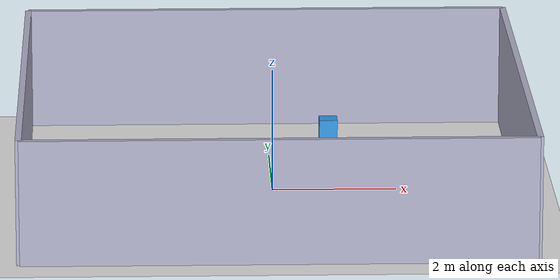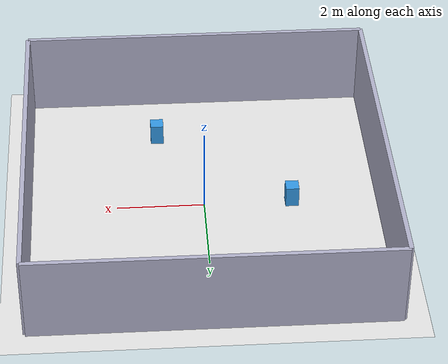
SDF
<?xml version="1.0"?>
<sdf version="1.8">
  <world name="symmetric_room">
    <!-- 8x8m room with 3 identical landmarks — Chapter 4 kidnapped robot demo -->
    <physics name="1ms" type="ignored">
      <max_step_size>0.001</max_step_size>
      <real_time_factor>1.0</real_time_factor>
    </physics>
    <plugin filename="gz-sim-physics-system" name="gz::sim::systems::Physics"/>
    <plugin filename="gz-sim-user-commands-system" name="gz::sim::systems::UserCommands"/>
    <plugin filename="gz-sim-scene-broadcaster-system" name="gz::sim::systems::SceneBroadcaster"/>
    <plugin filename="gz-sim-sensors-system" name="gz::sim::systems::Sensors">
      <render_engine>ogre2</render_engine>
    </plugin>

    <light type="directional" name="sun">
      <cast_shadows>true</cast_shadows>
      <pose>0 0 10 0 0 0</pose>
      <diffuse>0.8 0.8 0.8 1</diffuse>
      <specular>0.2 0.2 0.2 1</specular>
      <direction>-0.5 0.1 -0.9</direction>
    </light>

    <model name="ground_plane">
      <static>true</static>
      <link name="link">
        <collision name="collision">
          <geometry><plane><normal>0 0 1</normal><size>20 20</size></plane></geometry>
        </collision>
        <visual name="visual">
          <geometry><plane><normal>0 0 1</normal><size>20 20</size></plane></geometry>
          <material><ambient>0.9 0.9 0.9 1</ambient></material>
        </visual>
      </link>
    </model>

    <!-- Room walls (8x8) -->
    <model name="north_wall">
      <static>true</static>
      <pose>0 4 1 0 0 0</pose>
      <link name="link">
        <collision name="collision"><geometry><box><size>8 0.1 2</size></box></geometry></collision>
        <visual name="visual">
          <geometry><box><size>8 0.1 2</size></box></geometry>
          <material><ambient>0.7 0.7 0.8 1</ambient></material>
        </visual>
      </link>
    </model>
    <model name="south_wall">
      <static>true</static>
      <pose>0 -4 1 0 0 0</pose>
      <link name="link">
        <collision name="collision"><geometry><box><size>8 0.1 2</size></box></geometry></collision>
        <visual name="visual">
          <geometry><box><size>8 0.1 2</size></box></geometry>
          <material><ambient>0.7 0.7 0.8 1</ambient></material>
        </visual>
      </link>
    </model>
    <model name="east_wall">
      <static>true</static>
      <pose>4 0 1 0 0 0</pose>
      <link name="link">
        <collision name="collision"><geometry><box><size>0.1 8 2</size></box></geometry></collision>
        <visual name="visual">
          <geometry><box><size>0.1 8 2</size></box></geometry>
          <material><ambient>0.7 0.7 0.8 1</ambient></material>
        </visual>
      </link>
    </model>
    <model name="west_wall">
      <static>true</static>
      <pose>-4 0 1 0 0 0</pose>
      <link name="link">
        <collision name="collision"><geometry><box><size>0.1 8 2</size></box></geometry></collision>
        <visual name="visual">
          <geometry><box><size>0.1 8 2</size></box></geometry>
          <material><ambient>0.7 0.7 0.8 1</ambient></material>
        </visual>
      </link>
    </model>

    <!-- 3 identical landmarks (symmetric boxes) -->
    <model name="landmark_1">
      <static>true</static>
      <pose>-2 0 0.25 0 0 0</pose>
      <link name="link">
        <collision name="collision"><geometry><box><size>0.3 0.3 0.5</size></box></geometry></collision>
        <visual name="visual">
          <geometry><box><size>0.3 0.3 0.5</size></box></geometry>
          <material><ambient>0.2 0.6 0.9 1</ambient><diffuse>0.2 0.6 0.9 1</diffuse></material>
        </visual>
      </link>
    </model>
    <model name="landmark_2">
      <static>true</static>
      <pose>1 2.5 0.25 0 0 0</pose>
      <link name="link">
        <collision name="collision"><geometry><box><size>0.3 0.3 0.5</size></box></geometry></collision>
        <visual name="visual">
          <geometry><box><size>0.3 0.3 0.5</size></box></geometry>
          <material><ambient>0.2 0.6 0.9 1</ambient><diffuse>0.2 0.6 0.9 1</diffuse></material>
        </visual>
      </link>
    </model>
    <model name="landmark_3">
      <static>true</static>
      <pose>1 -2.5 0.25 0 0 0</pose>
      <link name="link">
        <collision name="collision"><geometry><box><size>0.3 0.3 0.5</size></box></geometry></collision>
        <visual name="visual">
          <geometry><box><size>0.3 0.3 0.5</size></box></geometry>
          <material><ambient>0.2 0.6 0.9 1</ambient><diffuse>0.2 0.6 0.9 1</diffuse></material>
        </visual>
      </link>
    </model>

  </world>
</sdf>
